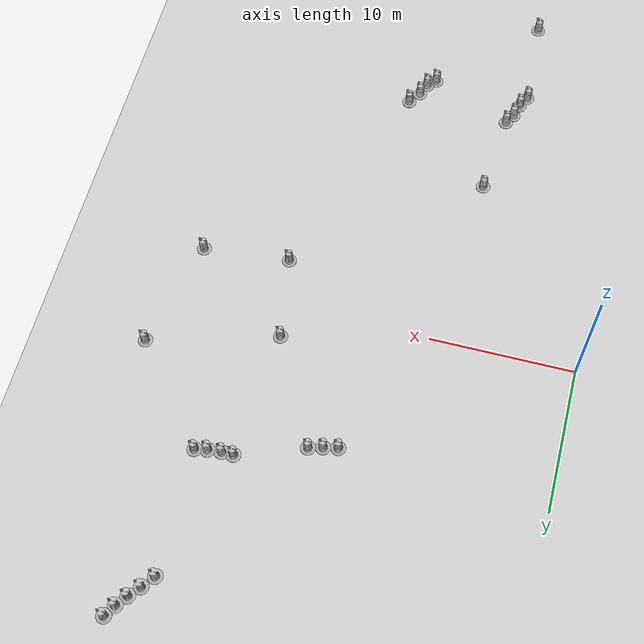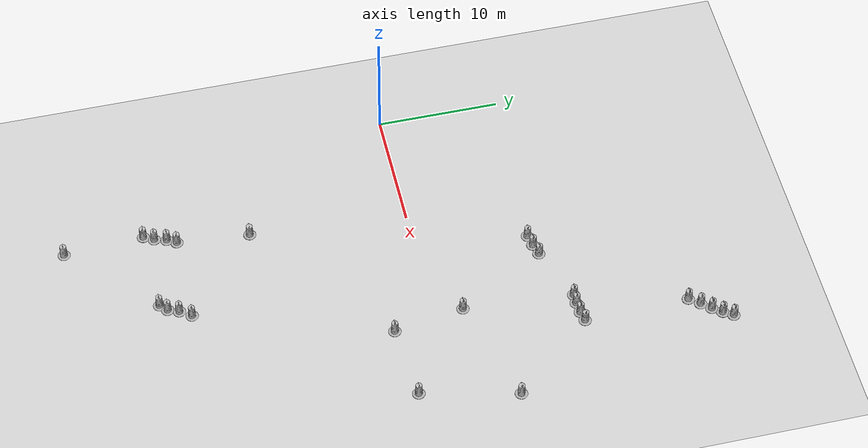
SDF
<sdf version="1.6">
 <world name="default">
  <scene>
   <sky><clouds><speed>12</speed></clouds></sky>
   <ambient>1 1 1 1</ambient>
   <shadows>1</shadows>
   <background>0.7 0.7 0.7 1</background>
  </scene>
  <light name="sun" type="directional">
   <pose>0 0 10 0 -0 0</pose>
   <diffuse>0.8 0.8 0.8 1</diffuse>
   <specular>0.1 0.1 0.1 1</specular>
   <attenuation>
    <range>1000</range>
    <constant>0.9</constant>
    <linear>0.01</linear>
    <quadratic>0.001</quadratic>
   </attenuation>
   <direction>-0.5 0.5 -1</direction>
  </light>
  <model name="grass_plane">
   <static>1</static>
   <link name="link">
    <collision name="collision">
     <geometry><plane><normal>0 0 1</normal><size>75 75</size></plane></geometry>
     <surface><friction><ode><mu>100</mu><mu2>50</mu2></ode></friction></surface>
    </collision>
    <visual name="visual">
     <cast_shadows>0</cast_shadows>
     <geometry><plane><normal>0 0 1</normal><size>75 75</size></plane></geometry>
     <material>
      <script>
       <uri>model://grass_plane/materials/scripts</uri>
       <uri>model://grass_plane/materials/textures</uri>
       <name>grass_plane/Image</name>
      </script>
     </material>
    </visual>
   </link>
  </model>
  <model name="construction_barrel_0">
   <static>1</static>
   <link name="link">
    <inertial>
     <pose>0 0 0.4 0 -0 0</pose>
     <mass>500</mass>
     <inertia><ixx>51.2096</ixx><iyy>51.2096</iyy><izz>25</izz><ixy>0</ixy><ixz>0</ixz><iyz>0</iyz></inertia>
    </inertial>
    <collision name="collision">
     <geometry>
      <mesh><uri>model://construction_barrel/meshes/construction_barrel.dae</uri><scale>1 1 1</scale></mesh>
     </geometry>
    </collision>
    <visual name="visual">
     <geometry>
      <mesh><uri>model://construction_barrel/meshes/construction_barrel.dae</uri><scale>1 1 1</scale></mesh>
     </geometry>
    </visual>
   </link>
   <pose>13.986 9.09272 0 0 -0 0</pose>
  </model>
  <model name="construction_barrel_1">
   <static>1</static>
   <link name="link">
    <inertial>
     <pose>0 0 0.4 0 -0 0</pose>
     <mass>500</mass>
     <inertia><ixx>51.2096</ixx><iyy>51.2096</iyy><izz>25</izz><ixy>0</ixy><ixz>0</ixz><iyz>0</iyz></inertia>
    </inertial>
    <collision name="collision">
     <geometry>
      <mesh><uri>model://construction_barrel/meshes/construction_barrel.dae</uri><scale>1 1 1</scale></mesh>
     </geometry>
    </collision>
    <visual name="visual">
     <geometry>
      <mesh><uri>model://construction_barrel/meshes/construction_barrel.dae</uri><scale>1 1 1</scale></mesh>
     </geometry>
    </visual>
   </link>
   <pose>26.7853 -2.89549 0 0 -0 0</pose>
  </model>
  <model name="construction_barrel_2">
   <static>1</static>
   <link name="link">
    <inertial>
     <pose>0 0 0.4 0 -0 0</pose>
     <mass>500</mass>
     <inertia><ixx>51.2096</ixx><iyy>51.2096</iyy><izz>25</izz><ixy>0</ixy><ixz>0</ixz><iyz>0</iyz></inertia>
    </inertial>
    <collision name="collision">
     <geometry>
      <mesh><uri>model://construction_barrel/meshes/construction_barrel.dae</uri><scale>1 1 1</scale></mesh>
     </geometry>
    </collision>
    <visual name="visual">
     <geometry>
      <mesh><uri>model://construction_barrel/meshes/construction_barrel.dae</uri><scale>1 1 1</scale></mesh>
     </geometry>
    </visual>
   </link>
   <pose>7.57054 -27.6762 0 0 -0 0</pose>
  </model>
  <model name="construction_barrel_3">
   <static>1</static>
   <link name="link">
    <inertial>
     <pose>0 0 0.4 0 -0 0</pose>
     <mass>500</mass>
     <inertia><ixx>51.2096</ixx><iyy>51.2096</iyy><izz>25</izz><ixy>0</ixy><ixz>0</ixz><iyz>0</iyz></inertia>
    </inertial>
    <collision name="collision">
     <geometry>
      <mesh><uri>model://construction_barrel/meshes/construction_barrel.dae</uri><scale>1 1 1</scale></mesh>
     </geometry>
    </collision>
    <visual name="visual">
     <geometry>
      <mesh><uri>model://construction_barrel/meshes/construction_barrel.dae</uri><scale>1 1 1</scale></mesh>
     </geometry>
    </visual>
   </link>
   <pose>14.7214 -20.4696 0 0 -0 0</pose>
  </model>
  <model name="construction_barrel_4">
   <static>1</static>
   <link name="link">
    <inertial>
     <pose>0 0 0.4 0 -0 0</pose>
     <mass>500</mass>
     <inertia><ixx>51.2096</ixx><iyy>51.2096</iyy><izz>25</izz><ixy>0</ixy><ixz>0</ixz><iyz>0</iyz></inertia>
    </inertial>
    <collision name="collision">
     <geometry>
      <mesh><uri>model://construction_barrel/meshes/construction_barrel.dae</uri><scale>1 1 1</scale></mesh>
     </geometry>
    </collision>
    <visual name="visual">
     <geometry>
      <mesh><uri>model://construction_barrel/meshes/construction_barrel.dae</uri><scale>1 1 1</scale></mesh>
     </geometry>
    </visual>
   </link>
   <pose>15.0682 -19.5858 0 0 -0 0</pose>
  </model>
  <model name="construction_barrel_5">
   <static>1</static>
   <link name="link">
    <inertial>
     <pose>0 0 0.4 0 -0 0</pose>
     <mass>500</mass>
     <inertia><ixx>51.2096</ixx><iyy>51.2096</iyy><izz>25</izz><ixy>0</ixy><ixz>0</ixz><iyz>0</iyz></inertia>
    </inertial>
    <collision name="collision">
     <geometry>
      <mesh><uri>model://construction_barrel/meshes/construction_barrel.dae</uri><scale>1 1 1</scale></mesh>
     </geometry>
    </collision>
    <visual name="visual">
     <geometry>
      <mesh><uri>model://construction_barrel/meshes/construction_barrel.dae</uri><scale>1 1 1</scale></mesh>
     </geometry>
    </visual>
   </link>
   <pose>14.1371 -21.0234 0 0 -0 0</pose>
  </model>
  <model name="construction_barrel_6">
   <static>1</static>
   <link name="link">
    <inertial>
     <pose>0 0 0.4 0 -0 0</pose>
     <mass>500</mass>
     <inertia><ixx>51.2096</ixx><iyy>51.2096</iyy><izz>25</izz><ixy>0</ixy><ixz>0</ixz><iyz>0</iyz></inertia>
    </inertial>
    <collision name="collision">
     <geometry>
      <mesh><uri>model://construction_barrel/meshes/construction_barrel.dae</uri><scale>1 1 1</scale></mesh>
     </geometry>
    </collision>
    <visual name="visual">
     <geometry>
      <mesh><uri>model://construction_barrel/meshes/construction_barrel.dae</uri><scale>1 1 1</scale></mesh>
     </geometry>
    </visual>
   </link>
   <pose>8.34278 -18.6196 0 0 -0 0</pose>
  </model>
  <model name="construction_barrel_7">
   <static>1</static>
   <link name="link">
    <inertial>
     <pose>0 0 0.4 0 -0 0</pose>
     <mass>500</mass>
     <inertia><ixx>51.2096</ixx><iyy>51.2096</iyy><izz>25</izz><ixy>0</ixy><ixz>0</ixz><iyz>0</iyz></inertia>
    </inertial>
    <collision name="collision">
     <geometry>
      <mesh><uri>model://construction_barrel/meshes/construction_barrel.dae</uri><scale>1 1 1</scale></mesh>
     </geometry>
    </collision>
    <visual name="visual">
     <geometry>
      <mesh><uri>model://construction_barrel/meshes/construction_barrel.dae</uri><scale>1 1 1</scale></mesh>
     </geometry>
    </visual>
   </link>
   <pose>8.85964 -12.74 0 0 -0 0</pose>
  </model>
  <model name="construction_barrel_8">
   <static>1</static>
   <link name="link">
    <inertial>
     <pose>0 0 0.4 0 -0 0</pose>
     <mass>500</mass>
     <inertia><ixx>51.2096</ixx><iyy>51.2096</iyy><izz>25</izz><ixy>0</ixy><ixz>0</ixz><iyz>0</iyz></inertia>
    </inertial>
    <collision name="collision">
     <geometry>
      <mesh><uri>model://construction_barrel/meshes/construction_barrel.dae</uri><scale>1 1 1</scale></mesh>
     </geometry>
    </collision>
    <visual name="visual">
     <geometry>
      <mesh><uri>model://construction_barrel/meshes/construction_barrel.dae</uri><scale>1 1 1</scale></mesh>
     </geometry>
    </visual>
   </link>
   <pose>15.6873 -18.6819 0 0 -0 0</pose>
  </model>
  <model name="construction_barrel_9">
   <static>1</static>
   <link name="link">
    <inertial>
     <pose>0 0 0.4 0 -0 0</pose>
     <mass>500</mass>
     <inertia><ixx>51.2096</ixx><iyy>51.2096</iyy><izz>25</izz><ixy>0</ixy><ixz>0</ixz><iyz>0</iyz></inertia>
    </inertial>
    <collision name="collision">
     <geometry>
      <mesh><uri>model://construction_barrel/meshes/construction_barrel.dae</uri><scale>1 1 1</scale></mesh>
     </geometry>
    </collision>
    <visual name="visual">
     <geometry>
      <mesh><uri>model://construction_barrel/meshes/construction_barrel.dae</uri><scale>1 1 1</scale></mesh>
     </geometry>
    </visual>
   </link>
   <pose>7.20982 -21.1749 0 0 -0 0</pose>
  </model>
  <model name="construction_barrel_10">
   <static>1</static>
   <link name="link">
    <inertial>
     <pose>0 0 0.4 0 -0 0</pose>
     <mass>500</mass>
     <inertia><ixx>51.2096</ixx><iyy>51.2096</iyy><izz>25</izz><ixy>0</ixy><ixz>0</ixz><iyz>0</iyz></inertia>
    </inertial>
    <collision name="collision">
     <geometry>
      <mesh><uri>model://construction_barrel/meshes/construction_barrel.dae</uri><scale>1 1 1</scale></mesh>
     </geometry>
    </collision>
    <visual name="visual">
     <geometry>
      <mesh><uri>model://construction_barrel/meshes/construction_barrel.dae</uri><scale>1 1 1</scale></mesh>
     </geometry>
    </visual>
   </link>
   <pose>22.9961 11.4575 0 0 -0 0</pose>
  </model>
  <model name="construction_barrel_11">
   <static>1</static>
   <link name="link">
    <inertial>
     <pose>0 0 0.4 0 -0 0</pose>
     <mass>500</mass>
     <inertia><ixx>51.2096</ixx><iyy>51.2096</iyy><izz>25</izz><ixy>0</ixy><ixz>0</ixz><iyz>0</iyz></inertia>
    </inertial>
    <collision name="collision">
     <geometry>
      <mesh><uri>model://construction_barrel/meshes/construction_barrel.dae</uri><scale>1 1 1</scale></mesh>
     </geometry>
    </collision>
    <visual name="visual">
     <geometry>
      <mesh><uri>model://construction_barrel/meshes/construction_barrel.dae</uri><scale>1 1 1</scale></mesh>
     </geometry>
    </visual>
   </link>
   <pose>22.1553 11.2897 0 0 -0 0</pose>
  </model>
  <model name="construction_barrel_12">
   <static>1</static>
   <link name="link">
    <inertial>
     <pose>0 0 0.4 0 -0 0</pose>
     <mass>500</mass>
     <inertia><ixx>51.2096</ixx><iyy>51.2096</iyy><izz>25</izz><ixy>0</ixy><ixz>0</ixz><iyz>0</iyz></inertia>
    </inertial>
    <collision name="collision">
     <geometry>
      <mesh><uri>model://construction_barrel/meshes/construction_barrel.dae</uri><scale>1 1 1</scale></mesh>
     </geometry>
    </collision>
    <visual name="visual">
     <geometry>
      <mesh><uri>model://construction_barrel/meshes/construction_barrel.dae</uri><scale>1 1 1</scale></mesh>
     </geometry>
    </visual>
   </link>
   <pose>7.64271 -20.3462 0 0 -0 0</pose>
  </model>
  <model name="construction_barrel_13">
   <static>1</static>
   <link name="link">
    <inertial>
     <pose>0 0 0.4 0 -0 0</pose>
     <mass>500</mass>
     <inertia><ixx>51.2096</ixx><iyy>51.2096</iyy><izz>25</izz><ixy>0</ixy><ixz>0</ixz><iyz>0</iyz></inertia>
    </inertial>
    <collision name="collision">
     <geometry>
      <mesh><uri>model://construction_barrel/meshes/construction_barrel.dae</uri><scale>1 1 1</scale></mesh>
     </geometry>
    </collision>
    <visual name="visual">
     <geometry>
      <mesh><uri>model://construction_barrel/meshes/construction_barrel.dae</uri><scale>1 1 1</scale></mesh>
     </geometry>
    </visual>
   </link>
   <pose>20.7479 -3.41954 0.080548 0 -0 0</pose>
  </model>
  <model name="construction_barrel_14">
   <static>1</static>
   <link name="link">
    <inertial>
     <pose>0 0 0.4 0 -0 0</pose>
     <mass>500</mass>
     <inertia><ixx>51.2096</ixx><iyy>51.2096</iyy><izz>25</izz><ixy>0</ixy><ixz>0</ixz><iyz>0</iyz></inertia>
    </inertial>
    <collision name="collision">
     <geometry>
      <mesh><uri>model://construction_barrel/meshes/construction_barrel.dae</uri><scale>1 1 1</scale></mesh>
     </geometry>
    </collision>
    <visual name="visual">
     <geometry>
      <mesh><uri>model://construction_barrel/meshes/construction_barrel.dae</uri><scale>1 1 1</scale></mesh>
     </geometry>
    </visual>
   </link>
   <pose>28.546 4.84228 0 0 -0 0</pose>
  </model>
  <model name="construction_barrel_15">
   <static>1</static>
   <link name="link">
    <inertial>
     <pose>0 0 0.4 0 -0 0</pose>
     <mass>500</mass>
     <inertia><ixx>51.2096</ixx><iyy>51.2096</iyy><izz>25</izz><ixy>0</ixy><ixz>0</ixz><iyz>0</iyz></inertia>
    </inertial>
    <collision name="collision">
     <geometry>
      <mesh><uri>model://construction_barrel/meshes/construction_barrel.dae</uri><scale>1 1 1</scale></mesh>
     </geometry>
    </collision>
    <visual name="visual">
     <geometry>
      <mesh><uri>model://construction_barrel/meshes/construction_barrel.dae</uri><scale>1 1 1</scale></mesh>
     </geometry>
    </visual>
   </link>
   <pose>7.91819 -19.3688 0 0 -0 0</pose>
  </model>
  <model name="construction_barrel_16">
   <static>1</static>
   <link name="link">
    <inertial>
     <pose>0 0 0.4 0 -0 0</pose>
     <mass>500</mass>
     <inertia><ixx>51.2096</ixx><iyy>51.2096</iyy><izz>25</izz><ixy>0</ixy><ixz>0</ixz><iyz>0</iyz></inertia>
    </inertial>
    <collision name="collision">
     <geometry>
      <mesh><uri>model://construction_barrel/meshes/construction_barrel.dae</uri><scale>1 1 1</scale></mesh>
     </geometry>
    </collision>
    <visual name="visual">
     <geometry>
      <mesh><uri>model://construction_barrel/meshes/construction_barrel.dae</uri><scale>1 1 1</scale></mesh>
     </geometry>
    </visual>
   </link>
   <pose>21.226 11.2112 -0.005785 0 -0 0</pose>
  </model>
  <model name="construction_barrel_17">
   <static>1</static>
   <link name="link">
    <inertial>
     <pose>0 0 0.4 0 -0 0</pose>
     <mass>500</mass>
     <inertia><ixx>51.2096</ixx><iyy>51.2096</iyy><izz>25</izz><ixy>0</ixy><ixz>0</ixz><iyz>0</iyz></inertia>
    </inertial>
    <collision name="collision">
     <geometry>
      <mesh><uri>model://construction_barrel/meshes/construction_barrel.dae</uri><scale>1 1 1</scale></mesh>
     </geometry>
    </collision>
    <visual name="visual">
     <geometry>
      <mesh><uri>model://construction_barrel/meshes/construction_barrel.dae</uri><scale>1 1 1</scale></mesh>
     </geometry>
    </visual>
   </link>
   <pose>22.8369 19.9827 0 0 -0 0</pose>
  </model>
  <model name="construction_barrel_18">
   <static>1</static>
   <link name="link">
    <inertial>
     <pose>0 0 0.4 0 -0 0</pose>
     <mass>500</mass>
     <inertia><ixx>51.2096</ixx><iyy>51.2096</iyy><izz>25</izz><ixy>0</ixy><ixz>0</ixz><iyz>0</iyz></inertia>
    </inertial>
    <collision name="collision">
     <geometry>
      <mesh><uri>model://construction_barrel/meshes/construction_barrel.dae</uri><scale>1 1 1</scale></mesh>
     </geometry>
    </collision>
    <visual name="visual">
     <geometry>
      <mesh><uri>model://construction_barrel/meshes/construction_barrel.dae</uri><scale>1 1 1</scale></mesh>
     </geometry>
    </visual>
   </link>
   <pose>20.4341 11.2185 0 0 -0 0</pose>
  </model>
  <model name="construction_barrel_19">
   <static>1</static>
   <link name="link">
    <inertial>
     <pose>0 0 0.4 0 -0 0</pose>
     <mass>500</mass>
     <inertia><ixx>51.2096</ixx><iyy>51.2096</iyy><izz>25</izz><ixy>0</ixy><ixz>0</ixz><iyz>0</iyz></inertia>
    </inertial>
    <collision name="collision">
     <geometry>
      <mesh><uri>model://construction_barrel/meshes/construction_barrel.dae</uri><scale>1 1 1</scale></mesh>
     </geometry>
    </collision>
    <visual name="visual">
     <geometry>
      <mesh><uri>model://construction_barrel/meshes/construction_barrel.dae</uri><scale>1 1 1</scale></mesh>
     </geometry>
    </visual>
   </link>
   <pose>25.1153 23.0461 0 0 -0 0</pose>
  </model>
  <model name="construction_barrel_20">
   <static>1</static>
   <link name="link">
    <inertial>
     <pose>0 0 0.4 0 -0 0</pose>
     <mass>500</mass>
     <inertia><ixx>51.2096</ixx><iyy>51.2096</iyy><izz>25</izz><ixy>0</ixy><ixz>0</ixz><iyz>0</iyz></inertia>
    </inertial>
    <collision name="collision">
     <geometry>
      <mesh><uri>model://construction_barrel/meshes/construction_barrel.dae</uri><scale>1 1 1</scale></mesh>
     </geometry>
    </collision>
    <visual name="visual">
     <geometry>
      <mesh><uri>model://construction_barrel/meshes/construction_barrel.dae</uri><scale>1 1 1</scale></mesh>
     </geometry>
    </visual>
   </link>
   <pose>23.4785 20.8087 0 0 -0 0</pose>
  </model>
  <model name="construction_barrel_21">
   <static>1</static>
   <link name="link">
    <inertial>
     <pose>0 0 0.4 0 -0 0</pose>
     <mass>500</mass>
     <inertia><ixx>51.2096</ixx><iyy>51.2096</iyy><izz>25</izz><ixy>0</ixy><ixz>0</ixz><iyz>0</iyz></inertia>
    </inertial>
    <collision name="collision">
     <geometry>
      <mesh><uri>model://construction_barrel/meshes/construction_barrel.dae</uri><scale>1 1 1</scale></mesh>
     </geometry>
    </collision>
    <visual name="visual">
     <geometry>
      <mesh><uri>model://construction_barrel/meshes/construction_barrel.dae</uri><scale>1 1 1</scale></mesh>
     </geometry>
    </visual>
   </link>
   <pose>24.6507 22.2755 0 0 -0 0</pose>
  </model>
  <model name="construction_barrel_22">
   <static>1</static>
   <link name="link">
    <inertial>
     <pose>0 0 0.4 0 -0 0</pose>
     <mass>500</mass>
     <inertia><ixx>51.2096</ixx><iyy>51.2096</iyy><izz>25</izz><ixy>0</ixy><ixz>0</ixz><iyz>0</iyz></inertia>
    </inertial>
    <collision name="collision">
     <geometry>
      <mesh><uri>model://construction_barrel/meshes/construction_barrel.dae</uri><scale>1 1 1</scale></mesh>
     </geometry>
    </collision>
    <visual name="visual">
     <geometry>
      <mesh><uri>model://construction_barrel/meshes/construction_barrel.dae</uri><scale>1 1 1</scale></mesh>
     </geometry>
    </visual>
   </link>
   <pose>24.0962 21.5441 0 0 -0 0</pose>
  </model>
  <model name="construction_barrel_23">
   <static>1</static>
   <link name="link">
    <inertial>
     <pose>0 0 0.4 0 -0 0</pose>
     <mass>500</mass>
     <inertia><ixx>51.2096</ixx><iyy>51.2096</iyy><izz>25</izz><ixy>0</ixy><ixz>0</ixz><iyz>0</iyz></inertia>
    </inertial>
    <collision name="collision">
     <geometry>
      <mesh><uri>model://construction_barrel/meshes/construction_barrel.dae</uri><scale>1 1 1</scale></mesh>
     </geometry>
    </collision>
    <visual name="visual">
     <geometry>
      <mesh><uri>model://construction_barrel/meshes/construction_barrel.dae</uri><scale>1 1 1</scale></mesh>
     </geometry>
    </visual>
   </link>
   <pose>15.8958 9.55674 0 0 -0 0</pose>
  </model>
  <model name="construction_barrel_24">
   <static>1</static>
   <link name="link">
    <inertial>
     <pose>0 0 0.4 0 -0 0</pose>
     <mass>500</mass>
     <inertia><ixx>51.2096</ixx><iyy>51.2096</iyy><izz>25</izz><ixy>0</ixy><ixz>0</ixz><iyz>0</iyz></inertia>
    </inertial>
    <collision name="collision">
     <geometry>
      <mesh><uri>model://construction_barrel/meshes/construction_barrel.dae</uri><scale>1 1 1</scale></mesh>
     </geometry>
    </collision>
    <visual name="visual">
     <geometry>
      <mesh><uri>model://construction_barrel/meshes/construction_barrel.dae</uri><scale>1 1 1</scale></mesh>
     </geometry>
    </visual>
   </link>
   <pose>14.9491 9.29526 0 0 -0 0</pose>
  </model>
  <model name="construction_barrel_25">
   <static>1</static>
   <link name="link">
    <inertial>
     <pose>0 0 0.4 0 -0 0</pose>
     <mass>500</mass>
     <inertia><ixx>51.2096</ixx><iyy>51.2096</iyy><izz>25</izz><ixy>0</ixy><ixz>0</ixz><iyz>0</iyz></inertia>
    </inertial>
    <collision name="collision">
     <geometry>
      <mesh><uri>model://construction_barrel/meshes/construction_barrel.dae</uri><scale>1 1 1</scale></mesh>
     </geometry>
    </collision>
    <visual name="visual">
     <geometry>
      <mesh><uri>model://construction_barrel/meshes/construction_barrel.dae</uri><scale>1 1 1</scale></mesh>
     </geometry>
    </visual>
   </link>
   <pose>19.7707 2.32543 0 0 -0 0</pose>
  </model>
  <gravity>0 0 -9.8</gravity>
  <magnetic_field>6e-06 2.3e-05 -4.2e-05</magnetic_field>
  <atmosphere type="adiabatic"/>
  <physics name="default_physics" default="0" type="ode">
   <max_step_size>0.001</max_step_size>
   <real_time_factor>1</real_time_factor>
   <real_time_update_rate>1000</real_time_update_rate>
  </physics>
  <spherical_coordinates>
   <surface_model>EARTH_WGS84</surface_model>
   <latitude_deg>0</latitude_deg>
   <longitude_deg>0</longitude_deg>
   <elevation>0</elevation>
   <heading_deg>0</heading_deg>
  </spherical_coordinates>
 </world>
</sdf>
